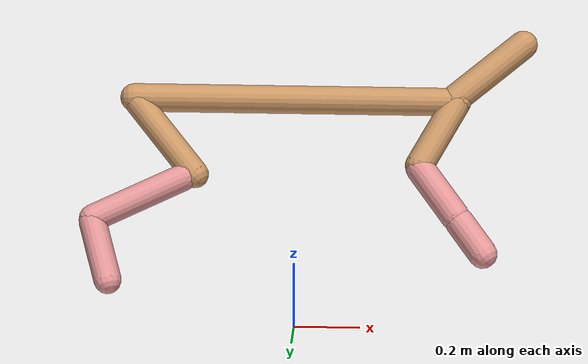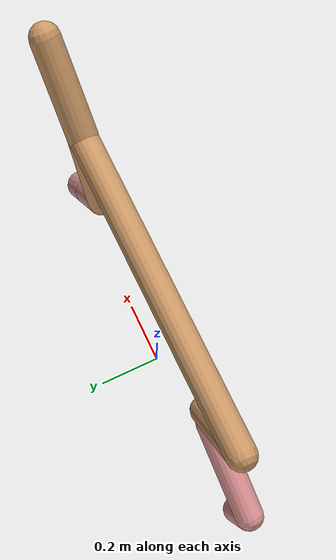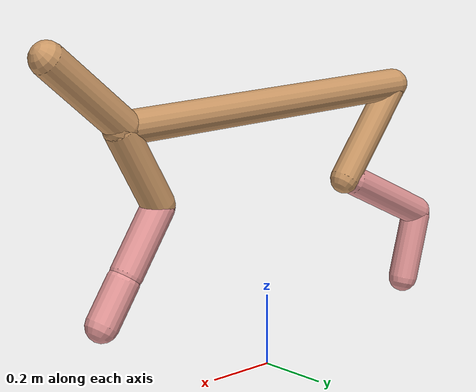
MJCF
<mujoco model="cheetah">
  <compiler angle="radian" coordinate="local" inertiafromgeom="true" settotalmass="14" />
  <default>
    <joint armature=".1" damping=".01" limited="true" solimplimit="0 .8 .03" solreflimit=".02 1" stiffness="8" />
    <geom conaffinity="0" condim="3" contype="1" friction="0.8 .1 .1" rgba="0.8 0.6 .4 1" solimp="0.0 0.8 0.01" solref="0.02 1" />
    <motor ctrllimited="true" ctrlrange="-1 1" />
  </default>
  <size nstack="300000" nuser_geom="1" />
  <option gravity="0 0 -9.81" timestep="0.01" />
  <worldbody>
    <body name="torso" pos="0.0 0.0 0.7344421224164278">
      <joint armature="0" axis="1 0 0" damping="0" limited="false" name="ignorex" pos="0 0 0" stiffness="0" type="slide" />
      <joint armature="0" axis="0 0 1" damping="0" limited="false" name="ignorez" pos="0 0 0" stiffness="0" type="slide" />
      <joint armature="0" axis="0 1 0" damping="0" limited="false" name="ignorey" pos="0 0 0" stiffness="0" type="hinge" />
      <geom fromto="-0.5 0.0 0.0 0.5121485991472131 0.0 0.0" name="torso" size="0.04404611130705039" type="capsule" />
      <geom axisangle="0 1 0 .87" name="head" pos="0.612148599147213 0.0 0.1" size="0.045870729131183494 0.15" type="capsule" />

      <body name="bthigh" pos="-.5 0 0">
        <joint axis="0 1 0" damping="6" name="bthigh" pos="0 0 0" range="-.52 1.05" stiffness="240" type="hinge" />
        <geom axisangle="0 1 0 -3.8" name="bthigh" pos="0.10258047562394135 0.0 -0.13335461831112375" size="0.0421658169192179 0.14923229470371357" type="capsule" />
        <body name="bshin" pos="0.1651609512478827 0.0 -0.2567092366222475">
          <joint axis="0 1 0" damping="4.5" name="bshin" pos="0 0 0" range="-.785 .785" stiffness="180" type="hinge" />
          <geom axisangle="0 1 0 -2.03" name="bshin" pos="-0.14391601323792386 0.0 -0.07195800661896193" rgba="0.9 0.6 0.6 1" size="0.0421658169192179 0.15437823590039335" type="capsule" />
          <body name="bfoot" pos="-0.2878320264758477 0.0 -0.14391601323792386">
            <joint axis="0 1 0" damping="3" name="bfoot" pos="0 0 0" range="-.4 .785" stiffness="120" type="hinge" />
            <geom axisangle="0 1 0 -.27" name="bfoot" pos="0.030810678652982718 0.0 -0.09962119431131079" rgba="0.9 0.6 0.6 1" size="0.0421658169192179 0.09674369449757984" type="capsule" />
            <inertial mass="10" />
          </body>
        </body>
      </body>
      <body name="fthigh" pos="0.512148599147213 0.0 0.0">
        <joint axis="0 1 0" damping="4.5" name="fthigh" pos="0 0 0" range="-1.5 0.8" stiffness="180" type="hinge" />
        <geom axisangle="0 1 0 .52" name="fthigh" pos="-0.06342726423156052 0.0 -0.10873245296838943" size="0.04492342393990397 0.11995551949707157" type="capsule" />
        <body name="fshin" pos="-0.12685452846312104 0.0 -0.21746490593677886">
          <joint axis="0 1 0" damping="3" name="fshin" pos="0 0 0" range="-1.2 1.1" stiffness="120" type="hinge" />
          <geom axisangle="0 1 0 -.6" name="fshin" pos="0.058913033593137 0.0 -0.08157189266742046" rgba="0.9 0.6 0.6 1" size="0.04492342393990397 0.09560364711796682" type="capsule" />
          <body name="ffoot" pos="0.117826067186274 0.0 -0.16314378533484092">
            <joint axis="0 1 0" damping="1.5" name="ffoot" pos="0 0 0" range="-3.1 -0.3" stiffness="60" type="hinge" />
            <geom axisangle="0 1 0 -.6" name="ffoot" pos="0.04128742007542133 0.0 -0.06422487567287763" rgba="0.9 0.6 0.6 1" size="0.04492342393990397 0.06313448394582714" type="capsule" />
            <inertial mass="10" />
          </body>
        </body>
      </body>
    </body>
  </worldbody>
  <actuator>
    <motor gear="120" joint="bthigh" name="bthigh" />
    <motor gear="90" joint="bshin" name="bshin" />
    <motor gear="60" joint="bfoot" name="bfoot" />
    <motor gear="120" joint="fthigh" name="fthigh" />
    <motor gear="60" joint="fshin" name="fshin" />
    <motor gear="30" joint="ffoot" name="ffoot" />
  </actuator>
</mujoco>
